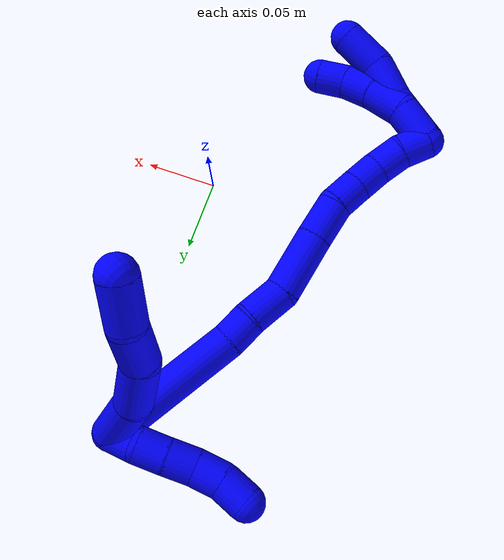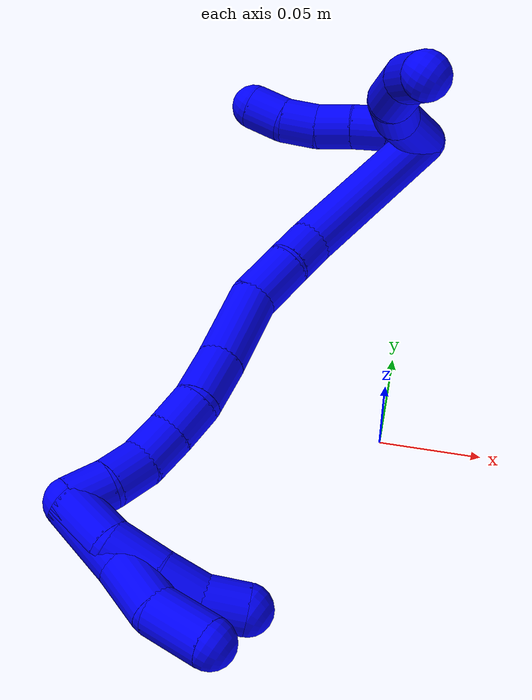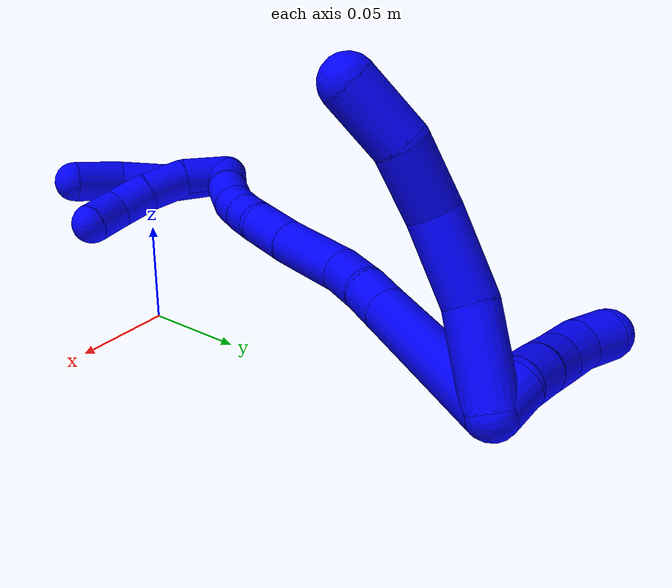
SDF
<sdf version="1.7">
 <world name="default">
  <model name="1">
   <static>0</static>
   <link name="1">
    <collision name="collision-cylinder-e_1_2_8">
     <pose>0.015552 -0.01507 0.005768 1.20526 0.766965 0.541527</pose>
     <geometry><cylinder><radius>0.0125</radius><length>0.044822</length></cylinder></geometry>
     <surface>
      <friction><ode><mu>1.16</mu><mu2>1.16</mu2><slip1>0</slip1><slip2>0</slip2></ode></friction>
      <contact><ode><kp>1e+06</kp><kd>1</kd><max_vel>0</max_vel><min_depth>0.001</min_depth></ode></contact>
     </surface>
    </collision>
    <visual name="visual-cylinder-e_1_2_8">
     <pose>0.015552 -0.01507 0.005768 1.20526 0.766965 0.541527</pose>
     <geometry><cylinder><radius>0.0125</radius><length>0.044822</length></cylinder></geometry>
     <material><ambient>0 0 1 1</ambient></material>
    </visual>
    <collision name="collision-cylinder-e_2_8_9">
     <pose>0.046693 -0.043123 0.011429 1.57901 0.876353 0.882682</pose>
     <geometry><cylinder><radius>0.0125</radius><length>0.040575</length></cylinder></geometry>
     <surface>
      <friction><ode><mu>1.16</mu><mu2>1.16</mu2><slip1>0</slip1><slip2>0</slip2></ode></friction>
      <contact><ode><kp>1e+06</kp><kd>1</kd><max_vel>0</max_vel><min_depth>0.001</min_depth></ode></contact>
     </surface>
    </collision>
    <visual name="visual-cylinder-e_2_8_9">
     <pose>0.046693 -0.043123 0.011429 1.57901 0.876353 0.882682</pose>
     <geometry><cylinder><radius>0.0125</radius><length>0.040575</length></cylinder></geometry>
     <material><ambient>0 0 1 1</ambient></material>
    </visual>
    <collision name="collision-cylinder-e_3_9_10">
     <pose>0.076599 -0.062643 0.007903 2.05277 1.09499 1.57774</pose>
     <geometry><cylinder><radius>0.0125</radius><length>0.032211</length></cylinder></geometry>
     <surface>
      <friction><ode><mu>1.16</mu><mu2>1.16</mu2><slip1>0</slip1><slip2>0</slip2></ode></friction>
      <contact><ode><kp>1e+06</kp><kd>1</kd><max_vel>0</max_vel><min_depth>0.001</min_depth></ode></contact>
     </surface>
    </collision>
    <visual name="visual-cylinder-e_3_9_10">
     <pose>0.076599 -0.062643 0.007903 2.05277 1.09499 1.57774</pose>
     <geometry><cylinder><radius>0.0125</radius><length>0.032211</length></cylinder></geometry>
     <material><ambient>0 0 1 1</ambient></material>
    </visual>
    <collision name="collision-cylinder-e_4_10_6">
     <pose>0.102608 -0.07858 -0.001619 2.14662 0.806566 1.33192</pose>
     <geometry><cylinder><radius>0.0125</radius><length>0.032391</length></cylinder></geometry>
     <surface>
      <friction><ode><mu>1.16</mu><mu2>1.16</mu2><slip1>0</slip1><slip2>0</slip2></ode></friction>
      <contact><ode><kp>1e+06</kp><kd>1</kd><max_vel>0</max_vel><min_depth>0.001</min_depth></ode></contact>
     </surface>
    </collision>
    <visual name="visual-cylinder-e_4_10_6">
     <pose>0.102608 -0.07858 -0.001619 2.14662 0.806566 1.33192</pose>
     <geometry><cylinder><radius>0.0125</radius><length>0.032391</length></cylinder></geometry>
     <material><ambient>0 0 1 1</ambient></material>
    </visual>
    <collision name="collision-cylinder-e_1_2_11">
     <pose>-0.0002 -0.00325 0.009455 0.33112 -0.019964 -0.003336</pose>
     <geometry><cylinder><radius>0.0125</radius><length>0.02</length></cylinder></geometry>
     <surface>
      <friction><ode><mu>1.16</mu><mu2>1.16</mu2><slip1>0</slip1><slip2>0</slip2></ode></friction>
      <contact><ode><kp>1e+06</kp><kd>1</kd><max_vel>0</max_vel><min_depth>0.001</min_depth></ode></contact>
     </surface>
    </collision>
    <visual name="visual-cylinder-e_1_2_11">
     <pose>-0.0002 -0.00325 0.009455 0.33112 -0.019964 -0.003336</pose>
     <geometry><cylinder><radius>0.0125</radius><length>0.02</length></cylinder></geometry>
     <material><ambient>0 0 1 1</ambient></material>
    </visual>
    <collision name="collision-cylinder-e_2_11_12">
     <pose>-0.003932 -0.009812 0.027659 0.361795 -0.361041 -0.066735</pose>
     <geometry><cylinder><radius>0.0125</radius><length>0.02</length></cylinder></geometry>
     <surface>
      <friction><ode><mu>1.16</mu><mu2>1.16</mu2><slip1>0</slip1><slip2>0</slip2></ode></friction>
      <contact><ode><kp>1e+06</kp><kd>1</kd><max_vel>0</max_vel><min_depth>0.001</min_depth></ode></contact>
     </surface>
    </collision>
    <visual name="visual-cylinder-e_2_11_12">
     <pose>-0.003932 -0.009812 0.027659 0.361795 -0.361041 -0.066735</pose>
     <geometry><cylinder><radius>0.0125</radius><length>0.02</length></cylinder></geometry>
     <material><ambient>0 0 1 1</ambient></material>
    </visual>
    <collision name="collision-cylinder-e_3_12_13">
     <pose>-0.011643 -0.01649 0.044848 0.379571 -0.431103 -0.084071</pose>
     <geometry><cylinder><radius>0.0125</radius><length>0.02</length></cylinder></geometry>
     <surface>
      <friction><ode><mu>1.16</mu><mu2>1.16</mu2><slip1>0</slip1><slip2>0</slip2></ode></friction>
      <contact><ode><kp>1e+06</kp><kd>1</kd><max_vel>0</max_vel><min_depth>0.001</min_depth></ode></contact>
     </surface>
    </collision>
    <visual name="visual-cylinder-e_3_12_13">
     <pose>-0.011643 -0.01649 0.044848 0.379571 -0.431103 -0.084071</pose>
     <geometry><cylinder><radius>0.0125</radius><length>0.02</length></cylinder></geometry>
     <material><ambient>0 0 1 1</ambient></material>
    </visual>
    <collision name="collision-cylinder-e_4_13_14">
     <pose>-0.018433 -0.022549 0.062556 0.282725 -0.264153 -0.037808</pose>
     <geometry><cylinder><radius>0.0125</radius><length>0.02</length></cylinder></geometry>
     <surface>
      <friction><ode><mu>1.16</mu><mu2>1.16</mu2><slip1>0</slip1><slip2>0</slip2></ode></friction>
      <contact><ode><kp>1e+06</kp><kd>1</kd><max_vel>0</max_vel><min_depth>0.001</min_depth></ode></contact>
     </surface>
    </collision>
    <visual name="visual-cylinder-e_4_13_14">
     <pose>-0.018433 -0.022549 0.062556 0.282725 -0.264153 -0.037808</pose>
     <geometry><cylinder><radius>0.0125</radius><length>0.02</length></cylinder></geometry>
     <material><ambient>0 0 1 1</ambient></material>
    </visual>
    <collision name="collision-cylinder-e_5_14_5">
     <pose>-0.022983 -0.025423 0.081634 0.018498 -0.195157 -0.001811</pose>
     <geometry><cylinder><radius>0.0125</radius><length>0.02</length></cylinder></geometry>
     <surface>
      <friction><ode><mu>1.16</mu><mu2>1.16</mu2><slip1>0</slip1><slip2>0</slip2></ode></friction>
      <contact><ode><kp>1e+06</kp><kd>1</kd><max_vel>0</max_vel><min_depth>0.001</min_depth></ode></contact>
     </surface>
    </collision>
    <visual name="visual-cylinder-e_5_14_5">
     <pose>-0.022983 -0.025423 0.081634 0.018498 -0.195157 -0.001811</pose>
     <geometry><cylinder><radius>0.0125</radius><length>0.02</length></cylinder></geometry>
     <material><ambient>0 0 1 1</ambient></material>
    </visual>
    <collision name="collision-cylinder-e_1_2_15">
     <pose>-0.00971 -0.046748 0.005848 1.44634 -0.203254 -0.179548</pose>
     <geometry><cylinder><radius>0.0125</radius><length>0.096205</length></cylinder></geometry>
     <surface>
      <friction><ode><mu>1.16</mu><mu2>1.16</mu2><slip1>0</slip1><slip2>0</slip2></ode></friction>
      <contact><ode><kp>1e+06</kp><kd>1</kd><max_vel>0</max_vel><min_depth>0.001</min_depth></ode></contact>
     </surface>
    </collision>
    <visual name="visual-cylinder-e_1_2_15">
     <pose>-0.00971 -0.046748 0.005848 1.44634 -0.203254 -0.179548</pose>
     <geometry><cylinder><radius>0.0125</radius><length>0.096205</length></cylinder></geometry>
     <material><ambient>0 0 1 1</ambient></material>
    </visual>
    <collision name="collision-cylinder-e_2_15_16">
     <pose>-0.019908 -0.103772 0.012069 1.53448 -0.047486 -0.045793</pose>
     <geometry><cylinder><radius>0.0125</radius><length>0.020589</length></cylinder></geometry>
     <surface>
      <friction><ode><mu>1.16</mu><mu2>1.16</mu2><slip1>0</slip1><slip2>0</slip2></ode></friction>
      <contact><ode><kp>1e+06</kp><kd>1</kd><max_vel>0</max_vel><min_depth>0.001</min_depth></ode></contact>
     </surface>
    </collision>
    <visual name="visual-cylinder-e_2_15_16">
     <pose>-0.019908 -0.103772 0.012069 1.53448 -0.047486 -0.045793</pose>
     <geometry><cylinder><radius>0.0125</radius><length>0.020589</length></cylinder></geometry>
     <material><ambient>0 0 1 1</ambient></material>
    </visual>
    <collision name="collision-cylinder-e_3_16_17">
     <pose>-0.02378 -0.127712 0.013582 1.48764 -0.241914 -0.222756</pose>
     <geometry><cylinder><radius>0.0125</radius><length>0.028245</length></cylinder></geometry>
     <surface>
      <friction><ode><mu>1.16</mu><mu2>1.16</mu2><slip1>0</slip1><slip2>0</slip2></ode></friction>
      <contact><ode><kp>1e+06</kp><kd>1</kd><max_vel>0</max_vel><min_depth>0.001</min_depth></ode></contact>
     </surface>
    </collision>
    <visual name="visual-cylinder-e_3_16_17">
     <pose>-0.02378 -0.127712 0.013582 1.48764 -0.241914 -0.222756</pose>
     <geometry><cylinder><radius>0.0125</radius><length>0.028245</length></cylinder></geometry>
     <material><ambient>0 0 1 1</ambient></material>
    </visual>
    <collision name="collision-cylinder-e_4_17_18">
     <pose>-0.028704 -0.163038 0.00989 1.79019 -0.069323 -0.086464</pose>
     <geometry><cylinder><radius>0.0125</radius><length>0.044495</length></cylinder></geometry>
     <surface>
      <friction><ode><mu>1.16</mu><mu2>1.16</mu2><slip1>0</slip1><slip2>0</slip2></ode></friction>
      <contact><ode><kp>1e+06</kp><kd>1</kd><max_vel>0</max_vel><min_depth>0.001</min_depth></ode></contact>
     </surface>
    </collision>
    <visual name="visual-cylinder-e_4_17_18">
     <pose>-0.028704 -0.163038 0.00989 1.79019 -0.069323 -0.086464</pose>
     <geometry><cylinder><radius>0.0125</radius><length>0.044495</length></cylinder></geometry>
     <material><ambient>0 0 1 1</ambient></material>
    </visual>
    <collision name="collision-cylinder-e_5_18_19">
     <pose>-0.03063 -0.198487 0.002619 1.74602 -0.02747 -0.032759</pose>
     <geometry><cylinder><radius>0.0125</radius><length>0.028012</length></cylinder></geometry>
     <surface>
      <friction><ode><mu>1.16</mu><mu2>1.16</mu2><slip1>0</slip1><slip2>0</slip2></ode></friction>
      <contact><ode><kp>1e+06</kp><kd>1</kd><max_vel>0</max_vel><min_depth>0.001</min_depth></ode></contact>
     </surface>
    </collision>
    <visual name="visual-cylinder-e_5_18_19">
     <pose>-0.03063 -0.198487 0.002619 1.74602 -0.02747 -0.032759</pose>
     <geometry><cylinder><radius>0.0125</radius><length>0.028012</length></cylinder></geometry>
     <material><ambient>0 0 1 1</ambient></material>
    </visual>
    <collision name="collision-cylinder-e_6_19_20">
     <pose>-0.033699 -0.222435 0.000482 1.54093 -0.258146 -0.250628</pose>
     <geometry><cylinder><radius>0.0125</radius><length>0.021029</length></cylinder></geometry>
     <surface>
      <friction><ode><mu>1.16</mu><mu2>1.16</mu2><slip1>0</slip1><slip2>0</slip2></ode></friction>
      <contact><ode><kp>1e+06</kp><kd>1</kd><max_vel>0</max_vel><min_depth>0.001</min_depth></ode></contact>
     </surface>
    </collision>
    <visual name="visual-cylinder-e_6_19_20">
     <pose>-0.033699 -0.222435 0.000482 1.54093 -0.258146 -0.250628</pose>
     <geometry><cylinder><radius>0.0125</radius><length>0.021029</length></cylinder></geometry>
     <material><ambient>0 0 1 1</ambient></material>
    </visual>
    <collision name="collision-cylinder-e_7_20_21">
     <pose>-0.038544 -0.242534 0.001491 1.49991 -0.213598 -0.19907</pose>
     <geometry><cylinder><radius>0.0125</radius><length>0.020388</length></cylinder></geometry>
     <surface>
      <friction><ode><mu>1.16</mu><mu2>1.16</mu2><slip1>0</slip1><slip2>0</slip2></ode></friction>
      <contact><ode><kp>1e+06</kp><kd>1</kd><max_vel>0</max_vel><min_depth>0.001</min_depth></ode></contact>
     </surface>
    </collision>
    <visual name="visual-cylinder-e_7_20_21">
     <pose>-0.038544 -0.242534 0.001491 1.49991 -0.213598 -0.19907</pose>
     <geometry><cylinder><radius>0.0125</radius><length>0.020388</length></cylinder></geometry>
     <material><ambient>0 0 1 1</ambient></material>
    </visual>
    <collision name="collision-cylinder-e_8_21_22">
     <pose>-0.041041 -0.262587 0.004623 1.33539 -0.032249 -0.025429</pose>
     <geometry><cylinder><radius>0.0125</radius><length>0.020817</length></cylinder></geometry>
     <surface>
      <friction><ode><mu>1.16</mu><mu2>1.16</mu2><slip1>0</slip1><slip2>0</slip2></ode></friction>
      <contact><ode><kp>1e+06</kp><kd>1</kd><max_vel>0</max_vel><min_depth>0.001</min_depth></ode></contact>
     </surface>
    </collision>
    <visual name="visual-cylinder-e_8_21_22">
     <pose>-0.041041 -0.262587 0.004623 1.33539 -0.032249 -0.025429</pose>
     <geometry><cylinder><radius>0.0125</radius><length>0.020817</length></cylinder></geometry>
     <material><ambient>0 0 1 1</ambient></material>
    </visual>
    <collision name="collision-cylinder-e_9_22_1">
     <pose>-0.042948 -0.281783 0.011208 1.14136 -0.156065 -0.100302</pose>
     <geometry><cylinder><radius>0.0125</radius><length>0.020219</length></cylinder></geometry>
     <surface>
      <friction><ode><mu>1.16</mu><mu2>1.16</mu2><slip1>0</slip1><slip2>0</slip2></ode></friction>
      <contact><ode><kp>1e+06</kp><kd>1</kd><max_vel>0</max_vel><min_depth>0.001</min_depth></ode></contact>
     </surface>
    </collision>
    <visual name="visual-cylinder-e_9_22_1">
     <pose>-0.042948 -0.281783 0.011208 1.14136 -0.156065 -0.100302</pose>
     <geometry><cylinder><radius>0.0125</radius><length>0.020219</length></cylinder></geometry>
     <material><ambient>0 0 1 1</ambient></material>
    </visual>
    <collision name="collision-cylinder-e_1_1_23">
     <pose>-0.043276 -0.296441 -0.003961 2.86064 0.061708 0.429783</pose>
     <geometry><cylinder><radius>0.0125</radius><length>0.040308</length></cylinder></geometry>
     <surface>
      <friction><ode><mu>1.16</mu><mu2>1.16</mu2><slip1>0</slip1><slip2>0</slip2></ode></friction>
      <contact><ode><kp>1e+06</kp><kd>1</kd><max_vel>0</max_vel><min_depth>0.001</min_depth></ode></contact>
     </surface>
    </collision>
    <visual name="visual-cylinder-e_1_1_23">
     <pose>-0.043276 -0.296441 -0.003961 2.86064 0.061708 0.429783</pose>
     <geometry><cylinder><radius>0.0125</radius><length>0.040308</length></cylinder></geometry>
     <material><ambient>0 0 1 1</ambient></material>
    </visual>
    <collision name="collision-cylinder-e_2_23_24">
     <pose>-0.039024 -0.307888 -0.036407 2.72087 0.206409 0.903259</pose>
     <geometry><cylinder><radius>0.0125</radius><length>0.029368</length></cylinder></geometry>
     <surface>
      <friction><ode><mu>1.16</mu><mu2>1.16</mu2><slip1>0</slip1><slip2>0</slip2></ode></friction>
      <contact><ode><kp>1e+06</kp><kd>1</kd><max_vel>0</max_vel><min_depth>0.001</min_depth></ode></contact>
     </surface>
    </collision>
    <visual name="visual-cylinder-e_2_23_24">
     <pose>-0.039024 -0.307888 -0.036407 2.72087 0.206409 0.903259</pose>
     <geometry><cylinder><radius>0.0125</radius><length>0.029368</length></cylinder></geometry>
     <material><ambient>0 0 1 1</ambient></material>
    </visual>
    <collision name="collision-cylinder-e_3_24_4">
     <pose>-0.031352 -0.314887 -0.063909 3.06329 0.312576 2.65428</pose>
     <geometry><cylinder><radius>0.0125</radius><length>0.030324</length></cylinder></geometry>
     <surface>
      <friction><ode><mu>1.16</mu><mu2>1.16</mu2><slip1>0</slip1><slip2>0</slip2></ode></friction>
      <contact><ode><kp>1e+06</kp><kd>1</kd><max_vel>0</max_vel><min_depth>0.001</min_depth></ode></contact>
     </surface>
    </collision>
    <visual name="visual-cylinder-e_3_24_4">
     <pose>-0.031352 -0.314887 -0.063909 3.06329 0.312576 2.65428</pose>
     <geometry><cylinder><radius>0.0125</radius><length>0.030324</length></cylinder></geometry>
     <material><ambient>0 0 1 1</ambient></material>
    </visual>
    <collision name="collision-cylinder-e_1_1_25">
     <pose>-0.042289 -0.29449 0.001358 2.88827 0.152894 1.08305</pose>
     <geometry><cylinder><radius>0.0125</radius><length>0.029281</length></cylinder></geometry>
     <surface>
      <friction><ode><mu>1.16</mu><mu2>1.16</mu2><slip1>0</slip1><slip2>0</slip2></ode></friction>
      <contact><ode><kp>1e+06</kp><kd>1</kd><max_vel>0</max_vel><min_depth>0.001</min_depth></ode></contact>
     </surface>
    </collision>
    <visual name="visual-cylinder-e_1_1_25">
     <pose>-0.042289 -0.29449 0.001358 2.88827 0.152894 1.08305</pose>
     <geometry><cylinder><radius>0.0125</radius><length>0.029281</length></cylinder></geometry>
     <material><ambient>0 0 1 1</ambient></material>
    </visual>
    <collision name="collision-cylinder-e_2_25_26">
     <pose>-0.039967 -0.297299 -0.02596 -3.08023 0.006967 -0.226041</pose>
     <geometry><cylinder><radius>0.0125</radius><length>0.026671</length></cylinder></geometry>
     <surface>
      <friction><ode><mu>1.16</mu><mu2>1.16</mu2><slip1>0</slip1><slip2>0</slip2></ode></friction>
      <contact><ode><kp>1e+06</kp><kd>1</kd><max_vel>0</max_vel><min_depth>0.001</min_depth></ode></contact>
     </surface>
    </collision>
    <visual name="visual-cylinder-e_2_25_26">
     <pose>-0.039967 -0.297299 -0.02596 -3.08023 0.006967 -0.226041</pose>
     <geometry><cylinder><radius>0.0125</radius><length>0.026671</length></cylinder></geometry>
     <material><ambient>0 0 1 1</ambient></material>
    </visual>
    <collision name="collision-cylinder-e_3_26_27">
     <pose>-0.040792 -0.294663 -0.050463 -2.98059 -0.080791 0.928853</pose>
     <geometry><cylinder><radius>0.0125</radius><length>0.022753</length></cylinder></geometry>
     <surface>
      <friction><ode><mu>1.16</mu><mu2>1.16</mu2><slip1>0</slip1><slip2>0</slip2></ode></friction>
      <contact><ode><kp>1e+06</kp><kd>1</kd><max_vel>0</max_vel><min_depth>0.001</min_depth></ode></contact>
     </surface>
    </collision>
    <visual name="visual-cylinder-e_3_26_27">
     <pose>-0.040792 -0.294663 -0.050463 -2.98059 -0.080791 0.928853</pose>
     <geometry><cylinder><radius>0.0125</radius><length>0.022753</length></cylinder></geometry>
     <material><ambient>0 0 1 1</ambient></material>
    </visual>
    <collision name="collision-cylinder-e_4_27_3">
     <pose>-0.040611 -0.288402 -0.071269 -2.70866 0.103349 -0.461987</pose>
     <geometry><cylinder><radius>0.0125</radius><length>0.021295</length></cylinder></geometry>
     <surface>
      <friction><ode><mu>1.16</mu><mu2>1.16</mu2><slip1>0</slip1><slip2>0</slip2></ode></friction>
      <contact><ode><kp>1e+06</kp><kd>1</kd><max_vel>0</max_vel><min_depth>0.001</min_depth></ode></contact>
     </surface>
    </collision>
    <visual name="visual-cylinder-e_4_27_3">
     <pose>-0.040611 -0.288402 -0.071269 -2.70866 0.103349 -0.461987</pose>
     <geometry><cylinder><radius>0.0125</radius><length>0.021295</length></cylinder></geometry>
     <material><ambient>0 0 1 1</ambient></material>
    </visual>
    <collision name="collision-sphere-3">
     <pose>-0.039513 -0.283959 -0.080883 0 -0 0</pose>
     <geometry><sphere><radius>0.0125</radius></sphere></geometry>
     <surface>
      <friction><ode><mu>1.16</mu><mu2>1.16</mu2><slip1>0</slip1><slip2>0</slip2></ode></friction>
      <contact><ode><kp>1e+06</kp><kd>1</kd><max_vel>0</max_vel><min_depth>0.001</min_depth></ode></contact>
     </surface>
    </collision>
    <visual name="visual-sphere-3">
     <pose>-0.039513 -0.283959 -0.080883 0 -0 0</pose>
     <geometry><sphere><radius>0.0125</radius></sphere></geometry>
     <material><ambient>0 0 1 1</ambient></material>
    </visual>
    <collision name="collision-sphere-27">
     <pose>-0.04171 -0.292845 -0.061656 0 -0 0</pose>
     <geometry><sphere><radius>0.0125</radius></sphere></geometry>
     <surface>
      <friction><ode><mu>1.16</mu><mu2>1.16</mu2><slip1>0</slip1><slip2>0</slip2></ode></friction>
      <contact><ode><kp>1e+06</kp><kd>1</kd><max_vel>0</max_vel><min_depth>0.001</min_depth></ode></contact>
     </surface>
    </collision>
    <visual name="visual-sphere-27">
     <pose>-0.04171 -0.292845 -0.061656 0 -0 0</pose>
     <geometry><sphere><radius>0.0125</radius></sphere></geometry>
     <material><ambient>0 0 1 1</ambient></material>
    </visual>
    <collision name="collision-sphere-26">
     <pose>-0.039874 -0.296481 -0.03927 0 -0 0</pose>
     <geometry><sphere><radius>0.0125</radius></sphere></geometry>
     <surface>
      <friction><ode><mu>1.16</mu><mu2>1.16</mu2><slip1>0</slip1><slip2>0</slip2></ode></friction>
      <contact><ode><kp>1e+06</kp><kd>1</kd><max_vel>0</max_vel><min_depth>0.001</min_depth></ode></contact>
     </surface>
    </collision>
    <visual name="visual-sphere-26">
     <pose>-0.039874 -0.296481 -0.03927 0 -0 0</pose>
     <geometry><sphere><radius>0.0125</radius></sphere></geometry>
     <material><ambient>0 0 1 1</ambient></material>
    </visual>
    <collision name="collision-sphere-25">
     <pose>-0.040059 -0.298116 -0.01265 0 -0 0</pose>
     <geometry><sphere><radius>0.0125</radius></sphere></geometry>
     <surface>
      <friction><ode><mu>1.16</mu><mu2>1.16</mu2><slip1>0</slip1><slip2>0</slip2></ode></friction>
      <contact><ode><kp>1e+06</kp><kd>1</kd><max_vel>0</max_vel><min_depth>0.001</min_depth></ode></contact>
     </surface>
    </collision>
    <visual name="visual-sphere-25">
     <pose>-0.040059 -0.298116 -0.01265 0 -0 0</pose>
     <geometry><sphere><radius>0.0125</radius></sphere></geometry>
     <material><ambient>0 0 1 1</ambient></material>
    </visual>
    <collision name="collision-sphere-4">
     <pose>-0.026689 -0.316015 -0.078292 0 -0 0</pose>
     <geometry><sphere><radius>0.0125</radius></sphere></geometry>
     <surface>
      <friction><ode><mu>1.16</mu><mu2>1.16</mu2><slip1>0</slip1><slip2>0</slip2></ode></friction>
      <contact><ode><kp>1e+06</kp><kd>1</kd><max_vel>0</max_vel><min_depth>0.001</min_depth></ode></contact>
     </surface>
    </collision>
    <visual name="visual-sphere-4">
     <pose>-0.026689 -0.316015 -0.078292 0 -0 0</pose>
     <geometry><sphere><radius>0.0125</radius></sphere></geometry>
     <material><ambient>0 0 1 1</ambient></material>
    </visual>
    <collision name="collision-sphere-24">
     <pose>-0.036015 -0.313758 -0.049525 0 -0 0</pose>
     <geometry><sphere><radius>0.0125</radius></sphere></geometry>
     <surface>
      <friction><ode><mu>1.16</mu><mu2>1.16</mu2><slip1>0</slip1><slip2>0</slip2></ode></friction>
      <contact><ode><kp>1e+06</kp><kd>1</kd><max_vel>0</max_vel><min_depth>0.001</min_depth></ode></contact>
     </surface>
    </collision>
    <visual name="visual-sphere-24">
     <pose>-0.036015 -0.313758 -0.049525 0 -0 0</pose>
     <geometry><sphere><radius>0.0125</radius></sphere></geometry>
     <material><ambient>0 0 1 1</ambient></material>
    </visual>
    <collision name="collision-sphere-23">
     <pose>-0.042033 -0.302018 -0.023288 0 -0 0</pose>
     <geometry><sphere><radius>0.0125</radius></sphere></geometry>
     <surface>
      <friction><ode><mu>1.16</mu><mu2>1.16</mu2><slip1>0</slip1><slip2>0</slip2></ode></friction>
      <contact><ode><kp>1e+06</kp><kd>1</kd><max_vel>0</max_vel><min_depth>0.001</min_depth></ode></contact>
     </surface>
    </collision>
    <visual name="visual-sphere-23">
     <pose>-0.042033 -0.302018 -0.023288 0 -0 0</pose>
     <geometry><sphere><radius>0.0125</radius></sphere></geometry>
     <material><ambient>0 0 1 1</ambient></material>
    </visual>
    <collision name="collision-sphere-1">
     <pose>-0.044519 -0.290863 0.015366 0 -0 0</pose>
     <geometry><sphere><radius>0.0125</radius></sphere></geometry>
     <surface>
      <friction><ode><mu>1.16</mu><mu2>1.16</mu2><slip1>0</slip1><slip2>0</slip2></ode></friction>
      <contact><ode><kp>1e+06</kp><kd>1</kd><max_vel>0</max_vel><min_depth>0.001</min_depth></ode></contact>
     </surface>
    </collision>
    <visual name="visual-sphere-1">
     <pose>-0.044519 -0.290863 0.015366 0 -0 0</pose>
     <geometry><sphere><radius>0.0125</radius></sphere></geometry>
     <material><ambient>0 0 1 1</ambient></material>
    </visual>
    <collision name="collision-sphere-22">
     <pose>-0.041376 -0.272703 0.00705 0 -0 0</pose>
     <geometry><sphere><radius>0.0125</radius></sphere></geometry>
     <surface>
      <friction><ode><mu>1.16</mu><mu2>1.16</mu2><slip1>0</slip1><slip2>0</slip2></ode></friction>
      <contact><ode><kp>1e+06</kp><kd>1</kd><max_vel>0</max_vel><min_depth>0.001</min_depth></ode></contact>
     </surface>
    </collision>
    <visual name="visual-sphere-22">
     <pose>-0.041376 -0.272703 0.00705 0 -0 0</pose>
     <geometry><sphere><radius>0.0125</radius></sphere></geometry>
     <material><ambient>0 0 1 1</ambient></material>
    </visual>
    <collision name="collision-sphere-21">
     <pose>-0.040705 -0.252471 0.002197 0 -0 0</pose>
     <geometry><sphere><radius>0.0125</radius></sphere></geometry>
     <surface>
      <friction><ode><mu>1.16</mu><mu2>1.16</mu2><slip1>0</slip1><slip2>0</slip2></ode></friction>
      <contact><ode><kp>1e+06</kp><kd>1</kd><max_vel>0</max_vel><min_depth>0.001</min_depth></ode></contact>
     </surface>
    </collision>
    <visual name="visual-sphere-21">
     <pose>-0.040705 -0.252471 0.002197 0 -0 0</pose>
     <geometry><sphere><radius>0.0125</radius></sphere></geometry>
     <material><ambient>0 0 1 1</ambient></material>
    </visual>
    <collision name="collision-sphere-11">
     <pose>-0.000399 -0.006501 0.01891 0 -0 0</pose>
     <geometry><sphere><radius>0.0125</radius></sphere></geometry>
     <surface>
      <friction><ode><mu>1.16</mu><mu2>1.16</mu2><slip1>0</slip1><slip2>0</slip2></ode></friction>
      <contact><ode><kp>1e+06</kp><kd>1</kd><max_vel>0</max_vel><min_depth>0.001</min_depth></ode></contact>
     </surface>
    </collision>
    <visual name="visual-sphere-11">
     <pose>-0.000399 -0.006501 0.01891 0 -0 0</pose>
     <geometry><sphere><radius>0.0125</radius></sphere></geometry>
     <material><ambient>0 0 1 1</ambient></material>
    </visual>
    <collision name="collision-sphere-6">
     <pose>0.1143 -0.08798 -0.007722 0 -0 0</pose>
     <geometry><sphere><radius>0.0125</radius></sphere></geometry>
     <surface>
      <friction><ode><mu>1.16</mu><mu2>1.16</mu2><slip1>0</slip1><slip2>0</slip2></ode></friction>
      <contact><ode><kp>1e+06</kp><kd>1</kd><max_vel>0</max_vel><min_depth>0.001</min_depth></ode></contact>
     </surface>
    </collision>
    <visual name="visual-sphere-6">
     <pose>0.1143 -0.08798 -0.007722 0 -0 0</pose>
     <geometry><sphere><radius>0.0125</radius></sphere></geometry>
     <material><ambient>0 0 1 1</ambient></material>
    </visual>
    <collision name="collision-sphere-10">
     <pose>0.090916 -0.06918 0.004483 0 -0 0</pose>
     <geometry><sphere><radius>0.0125</radius></sphere></geometry>
     <surface>
      <friction><ode><mu>1.16</mu><mu2>1.16</mu2><slip1>0</slip1><slip2>0</slip2></ode></friction>
      <contact><ode><kp>1e+06</kp><kd>1</kd><max_vel>0</max_vel><min_depth>0.001</min_depth></ode></contact>
     </surface>
    </collision>
    <visual name="visual-sphere-10">
     <pose>0.090916 -0.06918 0.004483 0 -0 0</pose>
     <geometry><sphere><radius>0.0125</radius></sphere></geometry>
     <material><ambient>0 0 1 1</ambient></material>
    </visual>
    <collision name="collision-sphere-9">
     <pose>0.062283 -0.056106 0.011322 0 -0 0</pose>
     <geometry><sphere><radius>0.0125</radius></sphere></geometry>
     <surface>
      <friction><ode><mu>1.16</mu><mu2>1.16</mu2><slip1>0</slip1><slip2>0</slip2></ode></friction>
      <contact><ode><kp>1e+06</kp><kd>1</kd><max_vel>0</max_vel><min_depth>0.001</min_depth></ode></contact>
     </surface>
    </collision>
    <visual name="visual-sphere-9">
     <pose>0.062283 -0.056106 0.011322 0 -0 0</pose>
     <geometry><sphere><radius>0.0125</radius></sphere></geometry>
     <material><ambient>0 0 1 1</ambient></material>
    </visual>
    <collision name="collision-sphere-2">
     <geometry><sphere><radius>0.0125</radius></sphere></geometry>
     <surface>
      <friction><ode><mu>1.16</mu><mu2>1.16</mu2><slip1>0</slip1><slip2>0</slip2></ode></friction>
      <contact><ode><kp>1e+06</kp><kd>1</kd><max_vel>0</max_vel><min_depth>0.001</min_depth></ode></contact>
     </surface>
    </collision>
    <visual name="visual-sphere-2">
     <geometry><sphere><radius>0.0125</radius></sphere></geometry>
     <material><ambient>0 0 1 1</ambient></material>
    </visual>
    <collision name="collision-sphere-19">
     <pose>-0.031015 -0.212274 0.000179 0 -0 0</pose>
     <geometry><sphere><radius>0.0125</radius></sphere></geometry>
     <surface>
      <friction><ode><mu>1.16</mu><mu2>1.16</mu2><slip1>0</slip1><slip2>0</slip2></ode></friction>
      <contact><ode><kp>1e+06</kp><kd>1</kd><max_vel>0</max_vel><min_depth>0.001</min_depth></ode></contact>
     </surface>
    </collision>
    <visual name="visual-sphere-19">
     <pose>-0.031015 -0.212274 0.000179 0 -0 0</pose>
     <geometry><sphere><radius>0.0125</radius></sphere></geometry>
     <material><ambient>0 0 1 1</ambient></material>
    </visual>
    <collision name="collision-sphere-8">
     <pose>0.031104 -0.03014 0.011536 0 -0 0</pose>
     <geometry><sphere><radius>0.0125</radius></sphere></geometry>
     <surface>
      <friction><ode><mu>1.16</mu><mu2>1.16</mu2><slip1>0</slip1><slip2>0</slip2></ode></friction>
      <contact><ode><kp>1e+06</kp><kd>1</kd><max_vel>0</max_vel><min_depth>0.001</min_depth></ode></contact>
     </surface>
    </collision>
    <visual name="visual-sphere-8">
     <pose>0.031104 -0.03014 0.011536 0 -0 0</pose>
     <geometry><sphere><radius>0.0125</radius></sphere></geometry>
     <material><ambient>0 0 1 1</ambient></material>
    </visual>
    <collision name="collision-sphere-12">
     <pose>-0.007464 -0.013123 0.036409 0 -0 0</pose>
     <geometry><sphere><radius>0.0125</radius></sphere></geometry>
     <surface>
      <friction><ode><mu>1.16</mu><mu2>1.16</mu2><slip1>0</slip1><slip2>0</slip2></ode></friction>
      <contact><ode><kp>1e+06</kp><kd>1</kd><max_vel>0</max_vel><min_depth>0.001</min_depth></ode></contact>
     </surface>
    </collision>
    <visual name="visual-sphere-12">
     <pose>-0.007464 -0.013123 0.036409 0 -0 0</pose>
     <geometry><sphere><radius>0.0125</radius></sphere></geometry>
     <material><ambient>0 0 1 1</ambient></material>
    </visual>
    <collision name="collision-sphere-13">
     <pose>-0.015822 -0.019856 0.053286 0 -0 0</pose>
     <geometry><sphere><radius>0.0125</radius></sphere></geometry>
     <surface>
      <friction><ode><mu>1.16</mu><mu2>1.16</mu2><slip1>0</slip1><slip2>0</slip2></ode></friction>
      <contact><ode><kp>1e+06</kp><kd>1</kd><max_vel>0</max_vel><min_depth>0.001</min_depth></ode></contact>
     </surface>
    </collision>
    <visual name="visual-sphere-13">
     <pose>-0.015822 -0.019856 0.053286 0 -0 0</pose>
     <geometry><sphere><radius>0.0125</radius></sphere></geometry>
     <material><ambient>0 0 1 1</ambient></material>
    </visual>
    <collision name="collision-sphere-14">
     <pose>-0.021044 -0.025242 0.071826 0 -0 0</pose>
     <geometry><sphere><radius>0.0125</radius></sphere></geometry>
     <surface>
      <friction><ode><mu>1.16</mu><mu2>1.16</mu2><slip1>0</slip1><slip2>0</slip2></ode></friction>
      <contact><ode><kp>1e+06</kp><kd>1</kd><max_vel>0</max_vel><min_depth>0.001</min_depth></ode></contact>
     </surface>
    </collision>
    <visual name="visual-sphere-14">
     <pose>-0.021044 -0.025242 0.071826 0 -0 0</pose>
     <geometry><sphere><radius>0.0125</radius></sphere></geometry>
     <material><ambient>0 0 1 1</ambient></material>
    </visual>
    <collision name="collision-sphere-5">
     <pose>-0.024922 -0.025605 0.091443 0 -0 0</pose>
     <geometry><sphere><radius>0.0125</radius></sphere></geometry>
     <surface>
      <friction><ode><mu>1.16</mu><mu2>1.16</mu2><slip1>0</slip1><slip2>0</slip2></ode></friction>
      <contact><ode><kp>1e+06</kp><kd>1</kd><max_vel>0</max_vel><min_depth>0.001</min_depth></ode></contact>
     </surface>
    </collision>
    <visual name="visual-sphere-5">
     <pose>-0.024922 -0.025605 0.091443 0 -0 0</pose>
     <geometry><sphere><radius>0.0125</radius></sphere></geometry>
     <material><ambient>0 0 1 1</ambient></material>
    </visual>
    <collision name="collision-sphere-15">
     <pose>-0.01942 -0.093496 0.011696 0 -0 0</pose>
     <geometry><sphere><radius>0.0125</radius></sphere></geometry>
     <surface>
      <friction><ode><mu>1.16</mu><mu2>1.16</mu2><slip1>0</slip1><slip2>0</slip2></ode></friction>
      <contact><ode><kp>1e+06</kp><kd>1</kd><max_vel>0</max_vel><min_depth>0.001</min_depth></ode></contact>
     </surface>
    </collision>
    <visual name="visual-sphere-15">
     <pose>-0.01942 -0.093496 0.011696 0 -0 0</pose>
     <geometry><sphere><radius>0.0125</radius></sphere></geometry>
     <material><ambient>0 0 1 1</ambient></material>
    </visual>
    <collision name="collision-sphere-16">
     <pose>-0.020397 -0.114049 0.012443 0 -0 0</pose>
     <geometry><sphere><radius>0.0125</radius></sphere></geometry>
     <surface>
      <friction><ode><mu>1.16</mu><mu2>1.16</mu2><slip1>0</slip1><slip2>0</slip2></ode></friction>
      <contact><ode><kp>1e+06</kp><kd>1</kd><max_vel>0</max_vel><min_depth>0.001</min_depth></ode></contact>
     </surface>
    </collision>
    <visual name="visual-sphere-16">
     <pose>-0.020397 -0.114049 0.012443 0 -0 0</pose>
     <geometry><sphere><radius>0.0125</radius></sphere></geometry>
     <material><ambient>0 0 1 1</ambient></material>
    </visual>
    <collision name="collision-sphere-17">
     <pose>-0.027163 -0.141376 0.01472 0 -0 0</pose>
     <geometry><sphere><radius>0.0125</radius></sphere></geometry>
     <surface>
      <friction><ode><mu>1.16</mu><mu2>1.16</mu2><slip1>0</slip1><slip2>0</slip2></ode></friction>
      <contact><ode><kp>1e+06</kp><kd>1</kd><max_vel>0</max_vel><min_depth>0.001</min_depth></ode></contact>
     </surface>
    </collision>
    <visual name="visual-sphere-17">
     <pose>-0.027163 -0.141376 0.01472 0 -0 0</pose>
     <geometry><sphere><radius>0.0125</radius></sphere></geometry>
     <material><ambient>0 0 1 1</ambient></material>
    </visual>
    <collision name="collision-sphere-18">
     <pose>-0.030246 -0.184701 0.00506 0 -0 0</pose>
     <geometry><sphere><radius>0.0125</radius></sphere></geometry>
     <surface>
      <friction><ode><mu>1.16</mu><mu2>1.16</mu2><slip1>0</slip1><slip2>0</slip2></ode></friction>
      <contact><ode><kp>1e+06</kp><kd>1</kd><max_vel>0</max_vel><min_depth>0.001</min_depth></ode></contact>
     </surface>
    </collision>
    <visual name="visual-sphere-18">
     <pose>-0.030246 -0.184701 0.00506 0 -0 0</pose>
     <geometry><sphere><radius>0.0125</radius></sphere></geometry>
     <material><ambient>0 0 1 1</ambient></material>
    </visual>
    <collision name="collision-sphere-20">
     <pose>-0.036383 -0.232597 0.000786 0 -0 0</pose>
     <geometry><sphere><radius>0.0125</radius></sphere></geometry>
     <surface>
      <friction><ode><mu>1.16</mu><mu2>1.16</mu2><slip1>0</slip1><slip2>0</slip2></ode></friction>
      <contact><ode><kp>1e+06</kp><kd>1</kd><max_vel>0</max_vel><min_depth>0.001</min_depth></ode></contact>
     </surface>
    </collision>
    <visual name="visual-sphere-20">
     <pose>-0.036383 -0.232597 0.000786 0 -0 0</pose>
     <geometry><sphere><radius>0.0125</radius></sphere></geometry>
     <material><ambient>0 0 1 1</ambient></material>
    </visual>
    <inertial>
     <pose>-0.010757 -0.149758 0.001378 0 -0 0</pose>
     <mass>0.75</mass>
     <inertia><ixx>0.000136</ixx><ixy>0</ixy><ixz>0</ixz><iyy>-5e-06</iyy><iyz>0</iyz><izz>0.000109</izz></inertia>
    </inertial>
   </link>
   <pose>-0.002165 0.188966 0.015093 -0.761077 -1.31386 0.349049</pose>
  </model>
 </world>
</sdf>
